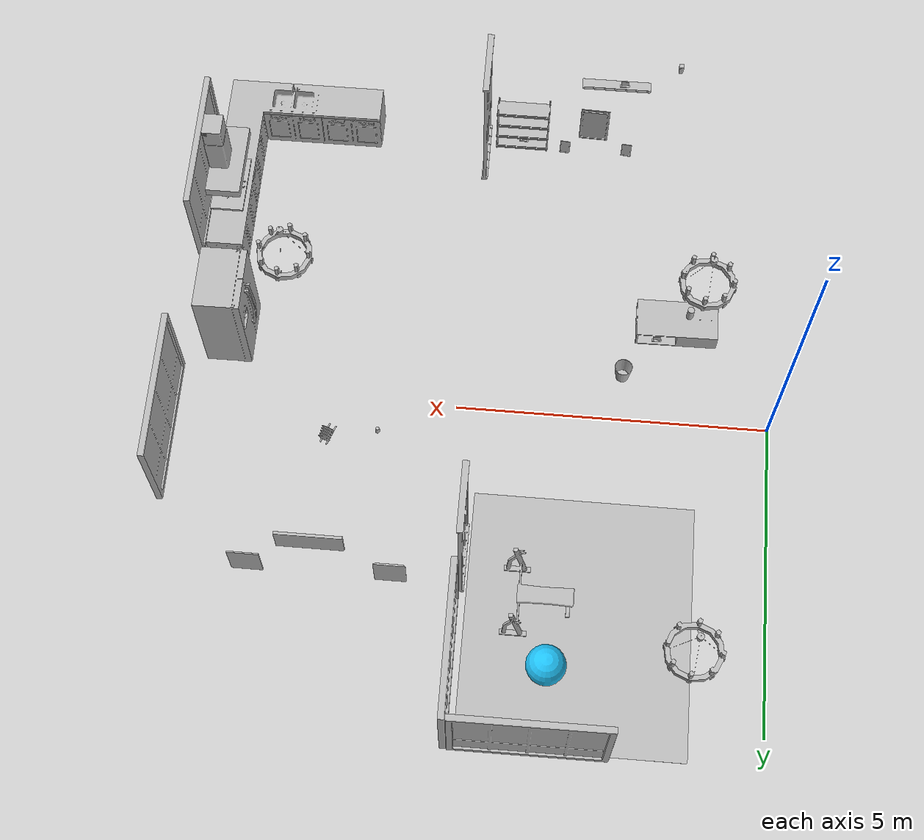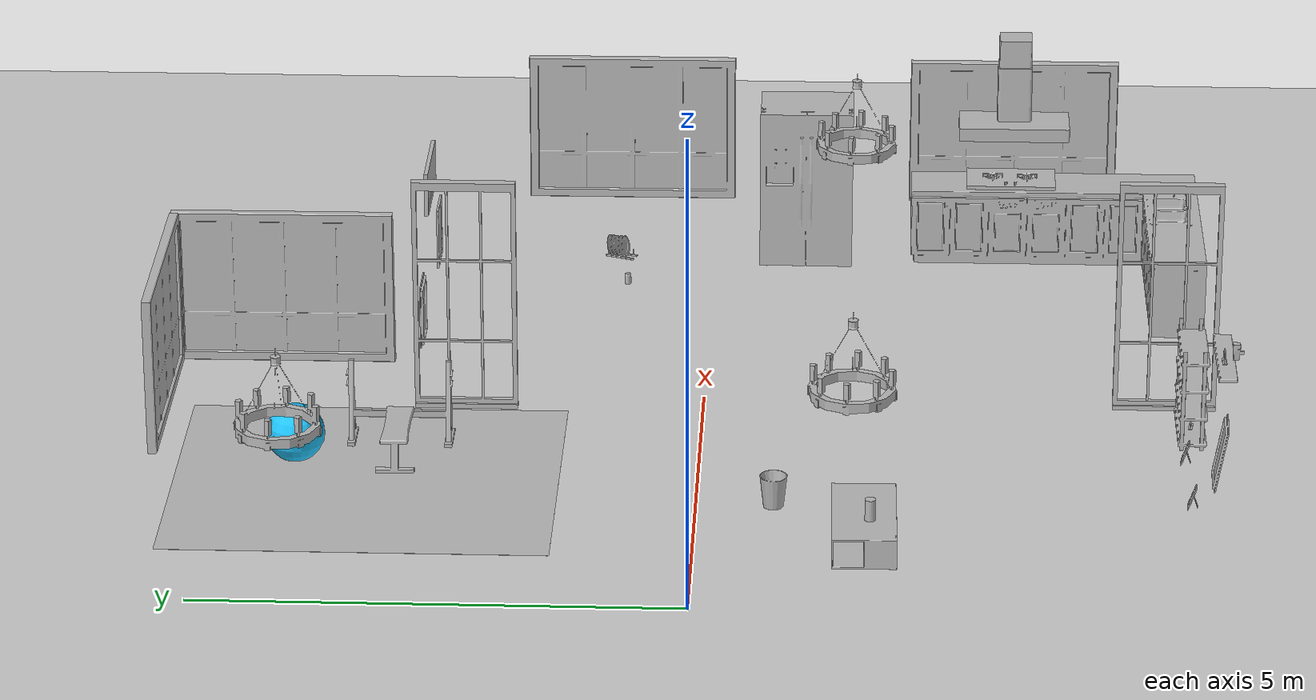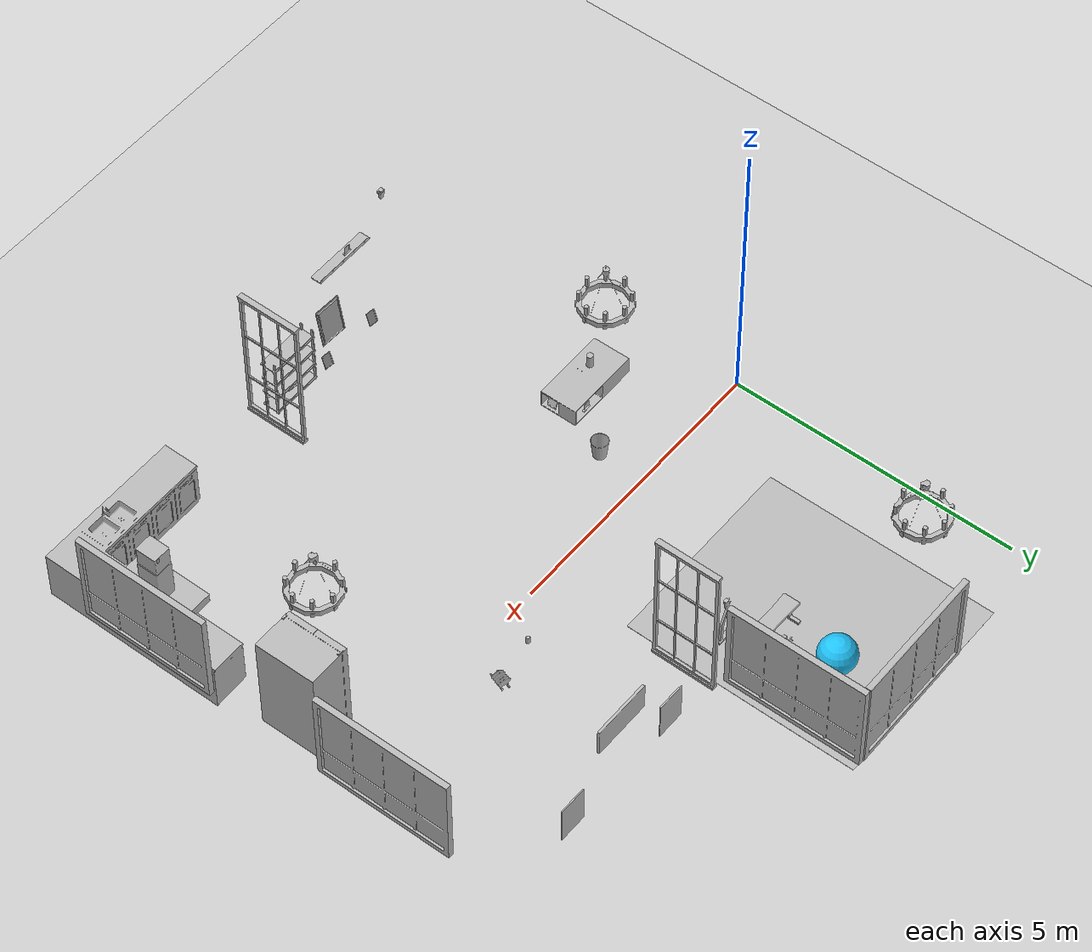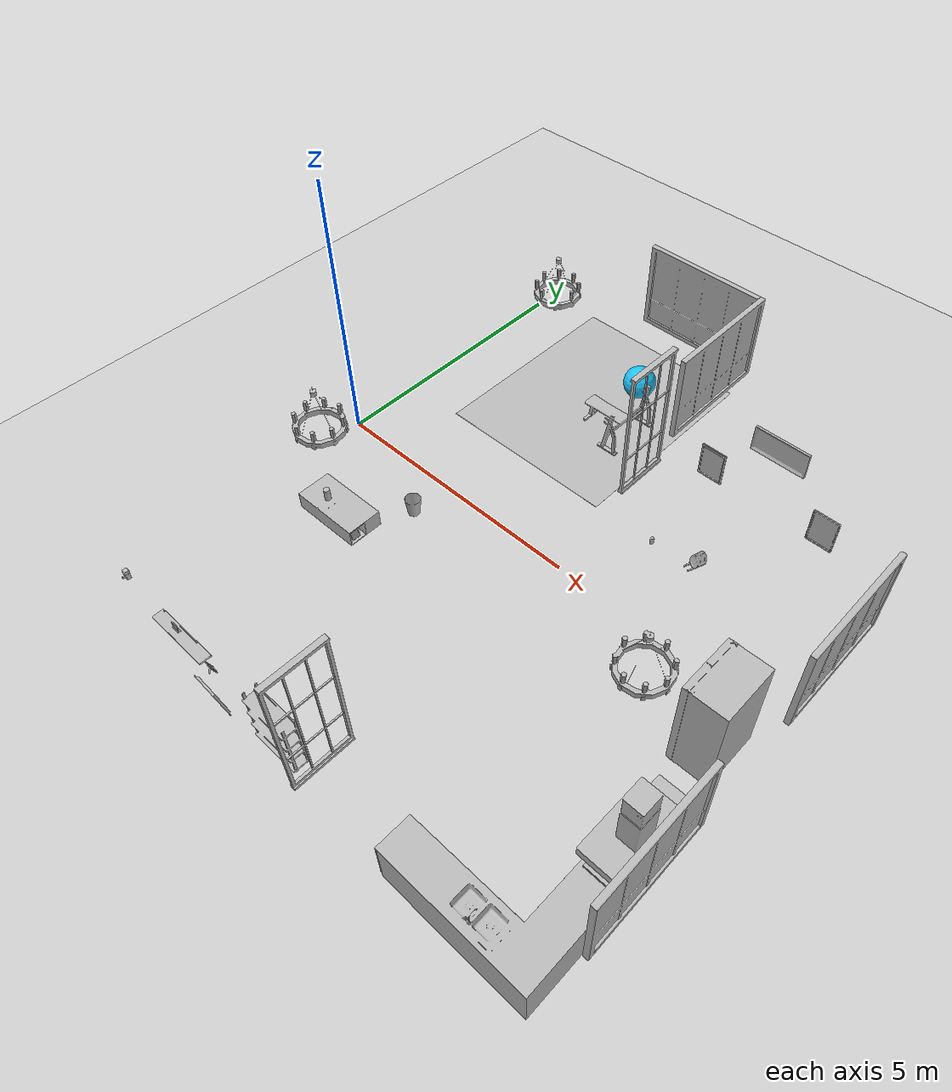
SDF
<sdf version="1.6">
 <world name="default">
  <model name="ground_plane">
   <static>1</static>
   <link name="link">
    <collision name="collision">
     <geometry><plane><normal>0 0 1</normal><size>100 100</size></plane></geometry>
     <surface><friction><ode><mu>100</mu><mu2>50</mu2></ode></friction></surface>
    </collision>
    <visual name="visual">
     <cast_shadows>0</cast_shadows>
     <geometry><plane><normal>0 0 1</normal><size>100 100</size></plane></geometry>
     <material>
      <script><uri>file://media/materials/scripts/gazebo.material</uri><name>Gazebo/Grey</name></script>
     </material>
    </visual>
   </link>
  </model>
  <model name="Ball_01_001">
   <link name="aws_robomaker_residential_Ball_01::link">
    <inertial>
     <mass>0.12</mass>
     <inertia>
      <ixx>0.030752</ixx>
      <ixy>0</ixy>
      <ixz>0</ixz>
      <iyy>0.030752</iyy>
      <iyz>0</iyz>
      <izz>0.030752</izz>
     </inertia>
    </inertial>
    <collision name="collision">
     <geometry><sphere><radius>0.31</radius></sphere></geometry>
     <surface>
      <friction><ode><mu>0.85</mu><mu2>0.85</mu2></ode></friction>
      <contact><ode><kd>8500</kd><max_vel>5.1</max_vel></ode></contact>
     </surface>
    </collision>
    <visual name="visual">
     <geometry><sphere><radius>0.31</radius></sphere></geometry>
     <material><diffuse>0.12 0.76 0.97 1</diffuse><ambient>0.03 0.21 0.27 1</ambient></material>
     <meta><layer>1</layer></meta>
    </visual>
   </link>
   <pose>3.2955 4.22567 0.30999 0 -0 0</pose>
  </model>
  <model name="Board_01_001">
   <link name="aws_robomaker_residential_Board_01::link">
    <inertial><mass>1</mass></inertial>
    <collision name="collision">
     <geometry>
      <mesh>
       <uri>file://models/aws_robomaker_residential_Board_01/meshes/aws_Board_01_collision.DAE</uri>
       <scale>1 1 1</scale>
      </mesh>
     </geometry>
    </collision>
    <visual name="visual">
     <geometry>
      <mesh><uri>file://models/aws_robomaker_residential_Board_01/meshes/aws_Board_01_visual.DAE</uri></mesh>
     </geometry>
     <meta><layer>2</layer></meta>
    </visual>
   </link>
   <static>1</static>
   <pose>2.77907 -5.3927 1.53817 0 -0 0</pose>
  </model>
  <model name="Chandelier_01_001">
   <link name="aws_robomaker_residential_Chandelier_01::link">
    <inertial><mass>1</mass></inertial>
    <collision name="collision">
     <geometry>
      <mesh>
       <uri>file://models/aws_robomaker_residential_Chandelier_01/meshes/aws_Chandelier_01_collision.DAE</uri>
       <scale>1 1 1</scale>
      </mesh>
     </geometry>
    </collision>
    <visual name="visual">
     <geometry>
      <mesh>
       <uri>file://models/aws_robomaker_residential_Chandelier_01/meshes/aws_Chandelier_01_visual.DAE</uri>
      </mesh>
     </geometry>
     <meta><layer>2</layer></meta>
    </visual>
   </link>
   <static>1</static>
   <pose>1.22106 4.15574 1.295 0 -0 0</pose>
  </model>
  <model name="Chandelier_01_003">
   <link name="aws_robomaker_residential_Chandelier_01::link">
    <inertial><mass>1</mass></inertial>
    <collision name="collision">
     <geometry>
      <mesh>
       <uri>file://models/aws_robomaker_residential_Chandelier_01/meshes/aws_Chandelier_01_collision.DAE</uri>
       <scale>1 1 1</scale>
      </mesh>
     </geometry>
    </collision>
    <visual name="visual">
     <geometry>
      <mesh>
       <uri>file://models/aws_robomaker_residential_Chandelier_01/meshes/aws_Chandelier_01_visual.DAE</uri>
      </mesh>
     </geometry>
     <meta><layer>2</layer></meta>
    </visual>
   </link>
   <static>1</static>
   <pose>7.82406 -1.59 1.751 0 -0 0</pose>
  </model>
  <model name="Chandelier_01_004">
   <link name="aws_robomaker_residential_Chandelier_01::link">
    <inertial><mass>1</mass></inertial>
    <collision name="collision">
     <geometry>
      <mesh>
       <uri>file://models/aws_robomaker_residential_Chandelier_01/meshes/aws_Chandelier_01_collision.DAE</uri>
       <scale>1 1 1</scale>
      </mesh>
     </geometry>
    </collision>
    <visual name="visual">
     <geometry>
      <mesh>
       <uri>file://models/aws_robomaker_residential_Chandelier_01/meshes/aws_Chandelier_01_visual.DAE</uri>
      </mesh>
     </geometry>
     <meta><layer>2</layer></meta>
    </visual>
   </link>
   <static>1</static>
   <pose>1.22106 -1.59204 1.7873 0 -0 0</pose>
  </model>
  <model name="Carpet_01_002">
   <link name="aws_robomaker_residential_Carpet_01::link">
    <inertial><mass>8.1</mass></inertial>
    <collision name="collision">
     <geometry>
      <mesh>
       <uri>file://models/aws_robomaker_residential_Carpet_01/meshes/aws_Carpet_01_collision.DAE</uri>
       <scale>1 1 0.95</scale>
      </mesh>
     </geometry>
     <pose>0 0 -0.01 0 -0 0</pose>
    </collision>
    <visual name="visual">
     <geometry>
      <mesh><uri>file://models/aws_robomaker_residential_Carpet_01/meshes/aws_Carpet_01_visual.DAE</uri></mesh>
     </geometry>
     <meta><layer>1</layer></meta>
    </visual>
   </link>
   <static>1</static>
   <pose>2.85405 3.45 0.000585 0 -0 0</pose>
  </model>
  <model name="CoffeeTable_01_001">
   <link name="aws_robomaker_residential_CoffeeTable_01::link">
    <inertial>
     <mass>21.7</mass>
     <inertia><ixx>0.81375</ixx><ixy>0</ixy><ixz>0</ixz><iyy>2.76675</iyy><iyz>0</iyz><izz>3.254</izz></inertia>
    </inertial>
    <collision name="collision">
     <geometry>
      <mesh>
       <uri>file://models/aws_robomaker_residential_CoffeeTable_01/meshes/aws_CoffeeTable_01_collision.DAE</uri>
       <scale>1 1 1</scale>
      </mesh>
     </geometry>
     <surface><contact><ode><max_vel>0.01</max_vel></ode></contact></surface>
    </collision>
    <visual name="visual">
     <geometry>
      <mesh>
       <uri>file://models/aws_robomaker_residential_CoffeeTable_01/meshes/aws_CoffeeTable_01_visual.DAE</uri>
      </mesh>
     </geometry>
     <meta><layer>1</layer></meta>
    </visual>
   </link>
   <static>1</static>
   <pose>1.5123 -1.73344 0.041983 0 -0 0.01</pose>
  </model>
  <model name="CookingBench_01_001">
   <link name="aws_robomaker_residential_CookingBench_01::link">
    <inertial><mass>1</mass></inertial>
    <collision name="collision">
     <geometry>
      <mesh>
       <uri>file://models/aws_robomaker_residential_CookingBench_01/meshes/aws_CookingBench_01_collision.DAE</uri>
       <scale>1 1 1</scale>
      </mesh>
     </geometry>
    </collision>
    <visual name="visual">
     <geometry>
      <mesh>
       <uri>file://models/aws_robomaker_residential_CookingBench_01/meshes/aws_CookingBench_01_visual.DAE</uri>
      </mesh>
     </geometry>
     <meta><layer>1</layer></meta>
    </visual>
   </link>
   <pose>9.03838 -3.35114 0.90361 0 -0 3.13713</pose>
   <static>1</static>
  </model>
  <model name="FitnessEquipment_01_001">
   <link name="aws_robomaker_residential_FitnessEquipment_01::link">
    <inertial><mass>80</mass></inertial>
    <collision name="collision">
     <geometry>
      <mesh>
       <uri>file://models/aws_robomaker_residential_FitnessEquipment_01/meshes/aws_FitnessEquipment_01_collision.DAE</uri>
       <scale>1 1 1</scale>
      </mesh>
     </geometry>
    </collision>
    <visual name="visual">
     <geometry>
      <mesh>
       <uri>file://models/aws_robomaker_residential_FitnessEquipment_01/meshes/aws_FitnessEquipment_01_visual.DAE</uri>
      </mesh>
     </geometry>
     <meta><layer>1</layer></meta>
    </visual>
   </link>
   <static>1</static>
   <pose>3.48472 3.1691 0.003168 0 -0 0</pose>
  </model>
  <model name="FoldingDoor_02_001">
   <link name="aws_robomaker_residential_FoldingDoor_02::link">
    <inertial><mass>1</mass></inertial>
    <collision name="collision">
     <geometry>
      <mesh>
       <uri>file://models/aws_robomaker_residential_FoldingDoor_02/meshes/aws_FoldingDoor_02_collision.DAE</uri>
       <scale>1 1 1</scale>
      </mesh>
     </geometry>
    </collision>
    <visual name="visual">
     <geometry>
      <mesh>
       <uri>file://models/aws_robomaker_residential_FoldingDoor_02/meshes/aws_FoldingDoor_02_visual.DAE</uri>
      </mesh>
     </geometry>
     <meta><layer>2</layer></meta>
    </visual>
   </link>
   <static>1</static>
   <pose>4.67423 2.46451 0 0 -0 3.14159</pose>
  </model>
  <model name="FoldingDoor_02_002">
   <link name="aws_robomaker_residential_FoldingDoor_02::link">
    <inertial><mass>1</mass></inertial>
    <collision name="collision">
     <geometry>
      <mesh>
       <uri>file://models/aws_robomaker_residential_FoldingDoor_02/meshes/aws_FoldingDoor_02_collision.DAE</uri>
       <scale>1 1 1</scale>
      </mesh>
     </geometry>
    </collision>
    <visual name="visual">
     <geometry>
      <mesh>
       <uri>file://models/aws_robomaker_residential_FoldingDoor_02/meshes/aws_FoldingDoor_02_visual.DAE</uri>
      </mesh>
     </geometry>
     <meta><layer>2</layer></meta>
    </visual>
   </link>
   <static>1</static>
   <pose>4.8912 -4.84968 0 0 -0 0</pose>
  </model>
  <model name="KitchenCabinet_01_001">
   <link name="aws_robomaker_residential_KitchenCabinet_01::link">
    <inertial><mass>1</mass></inertial>
    <collision name="collision">
     <geometry>
      <mesh>
       <uri>file://models/aws_robomaker_residential_KitchenCabinet_01/meshes/aws_KitchenCabinet_01_collision.DAE</uri>
       <scale>1 1 1</scale>
      </mesh>
     </geometry>
    </collision>
    <visual name="visual">
     <geometry>
      <mesh>
       <uri>file://models/aws_robomaker_residential_KitchenCabinet_01/meshes/aws_KitchenCabinet_01_visual.DAE</uri>
      </mesh>
     </geometry>
     <meta><layer>1</layer></meta>
    </visual>
   </link>
   <static>1</static>
   <pose>8.00201 -3.83651 0.012068 0 0 -3.14</pose>
  </model>
  <model name="LightC_01_001">
   <link name="aws_robomaker_residential_LightC_01::link">
    <inertial><mass>1</mass></inertial>
    <collision name="collision">
     <geometry>
      <mesh>
       <uri>file://models/aws_robomaker_residential_LightC_01/meshes/aws_LightC_01_collision.DAE</uri>
       <scale>1 1 1</scale>
      </mesh>
     </geometry>
    </collision>
    <visual name="visual">
     <geometry>
      <mesh><uri>file://models/aws_robomaker_residential_LightC_01/meshes/aws_LightC_01_visual.DAE</uri></mesh>
     </geometry>
     <meta><layer>2</layer></meta>
    </visual>
   </link>
   <static>1</static>
   <pose>1.76957 -5.44437 2 0 -0 0</pose>
  </model>
  <model name="PortraitB_02">
   <link name="aws_robomaker_residential_PortraitB_02::link">
    <inertial><mass>1</mass></inertial>
    <collision name="collision">
     <geometry>
      <mesh>
       <uri>file://models/aws_robomaker_residential_PortraitB_02/meshes/aws_PortraitB_01_collision.DAE</uri>
       <scale>1 1 1</scale>
      </mesh>
     </geometry>
    </collision>
    <visual name="visual">
     <geometry>
      <mesh>
       <uri>file://models/aws_robomaker_residential_PortraitB_02/meshes/aws_PortraitB_01_visual.DAE</uri>
      </mesh>
     </geometry>
     <meta><layer>2</layer></meta>
    </visual>
   </link>
   <static>1</static>
   <pose>5.73702 3.08031 0.3 0 -0 0</pose>
  </model>
  <model name="PortraitB_03">
   <link name="aws_robomaker_residential_PortraitB_03::link">
    <inertial><mass>1</mass></inertial>
    <collision name="collision">
     <geometry>
      <mesh>
       <uri>file://models/aws_robomaker_residential_PortraitB_03/meshes/aws_PortraitB_01_collision.DAE</uri>
       <scale>1 1 1</scale>
      </mesh>
     </geometry>
    </collision>
    <visual name="visual">
     <geometry>
      <mesh>
       <uri>file://models/aws_robomaker_residential_PortraitB_03/meshes/aws_PortraitB_01_visual.DAE</uri>
      </mesh>
     </geometry>
     <meta><layer>2</layer></meta>
    </visual>
   </link>
   <static>1</static>
   <pose>3.07138 -5.34937 0.005494 -0.168428 -0 3.10423</pose>
  </model>
  <model name="PortraitA_02">
   <link name="aws_robomaker_residential_PortraitA_02::link">
    <inertial><mass>1</mass></inertial>
    <collision name="collision">
     <geometry>
      <mesh>
       <uri>file://models/aws_robomaker_residential_PortraitA_02/meshes/aws_PortraitA_01_collision.DAE</uri>
       <scale>1 1 1</scale>
      </mesh>
     </geometry>
    </collision>
    <visual name="visual">
     <geometry>
      <mesh>
       <uri>file://models/aws_robomaker_residential_PortraitA_02/meshes/aws_PortraitA_01_visual.DAE</uri>
      </mesh>
     </geometry>
     <meta><layer>2</layer></meta>
    </visual>
   </link>
   <static>1</static>
   <pose>7.93702 3.08031 0.3 0 -0 3.14</pose>
  </model>
  <model name="PortraitD_02">
   <link name="aws_robomaker_residential_PortraitD_02::link">
    <inertial><mass>1.5</mass></inertial>
    <collision name="collision">
     <geometry>
      <mesh>
       <uri>file://models/aws_robomaker_residential_PortraitD_02/meshes/aws_PortraitD_01_collision.DAE</uri>
       <scale>1 1 1</scale>
      </mesh>
     </geometry>
    </collision>
    <visual name="visual">
     <geometry>
      <mesh>
       <uri>file://models/aws_robomaker_residential_PortraitD_02/meshes/aws_PortraitD_01_visual.DAE</uri>
      </mesh>
     </geometry>
     <meta><layer>2</layer></meta>
    </visual>
   </link>
   <static>1</static>
   <pose>6.87018 3.08031 1.48844 0 -0 0</pose>
  </model>
  <model name="DeskPortraitA_02">
   <link name="aws_robomaker_residential_DeskPortraitA_02::link">
    <inertial>
     <mass>1</mass>
     <inertia><ixx>0.0835</ixx><ixy>0</ixy><ixz>0</ixz><iyy>0.16</iyy><iyz>0</iyz><izz>0.08347</izz></inertia>
    </inertial>
    <collision name="collision">
     <geometry>
      <mesh>
       <uri>file://models/aws_robomaker_residential_DeskPortraitA_02/meshes/aws_DeskPortraitA_01_collision.DAE</uri>
       <scale>1 1 1</scale>
      </mesh>
     </geometry>
    </collision>
    <visual name="visual">
     <geometry>
      <mesh>
       <uri>file://models/aws_robomaker_residential_DeskPortraitA_02/meshes/aws_DeskPortraitA_01_visual.DAE</uri>
      </mesh>
     </geometry>
     <meta><layer>1</layer></meta>
    </visual>
   </link>
   <pose>2.0461 -1.89292 0.065162 -0.00054 -2e-06 1.57623</pose>
  </model>
  <model name="DeskPortraitD_01">
   <link name="aws_robomaker_residential_DeskPortraitD_01::link">
    <inertial>
     <mass>0.4</mass>
     <inertia><ixx>0.0616</ixx><ixy>0</ixy><ixz>0</ixz><iyy>0.1313</iyy><iyz>0</iyz><izz>0.0803</izz></inertia>
    </inertial>
    <collision name="collision">
     <geometry>
      <mesh>
       <uri>file://models/aws_robomaker_residential_DeskPortraitD_01/meshes/aws_DeskPortraitD_01_collision.DAE</uri>
       <scale>1 1 1</scale>
      </mesh>
     </geometry>
     <surface>
      <friction><ode><mu>0.7</mu><mu2>0.7</mu2></ode></friction>
      <contact><ode><kd>28500</kd></ode></contact>
     </surface>
    </collision>
    <visual name="visual">
     <geometry>
      <mesh>
       <uri>file://models/aws_robomaker_residential_DeskPortraitD_01/meshes/aws_DeskPortraitD_01_visual.DAE</uri>
      </mesh>
     </geometry>
     <meta><layer>1</layer></meta>
    </visual>
   </link>
   <pose>2.64556 -5.37622 1.57417 1e-06 -0 -3.11283</pose>
  </model>
  <model name="DeskPortraitD_03">
   <link name="aws_robomaker_residential_DeskPortraitD_03::link">
    <inertial>
     <mass>0.4</mass>
     <inertia><ixx>0.0616</ixx><ixy>0</ixy><ixz>0</ixz><iyy>0.1313</iyy><iyz>0</iyz><izz>0.0803</izz></inertia>
    </inertial>
    <collision name="collision">
     <geometry>
      <mesh>
       <uri>file://models/aws_robomaker_residential_DeskPortraitD_03/meshes/aws_DeskPortraitD_01_collision.DAE</uri>
       <scale>1 1 1</scale>
      </mesh>
     </geometry>
     <surface>
      <friction><ode><mu>0.7</mu><mu2>0.7</mu2></ode></friction>
      <contact><ode><kd>28500</kd></ode></contact>
     </surface>
    </collision>
    <visual name="visual">
     <geometry>
      <mesh>
       <uri>file://models/aws_robomaker_residential_DeskPortraitD_03/meshes/aws_DeskPortraitD_01_visual.DAE</uri>
      </mesh>
     </geometry>
     <meta><layer>1</layer></meta>
    </visual>
   </link>
   <pose>1.82673 -1.46488 0.064775 4e-06 -0 -3.11438</pose>
  </model>
  <model name="DeskPortraitD_04">
   <link name="aws_robomaker_residential_DeskPortraitD_04::link">
    <inertial>
     <mass>0.4</mass>
     <inertia><ixx>0.0616</ixx><ixy>0</ixy><ixz>0</ixz><iyy>0.1313</iyy><iyz>0</iyz><izz>0.0803</izz></inertia>
    </inertial>
    <collision name="collision">
     <geometry>
      <mesh>
       <uri>file://models/aws_robomaker_residential_DeskPortraitD_04/meshes/aws_DeskPortraitD_01_collision.DAE</uri>
       <scale>1 1 1</scale>
      </mesh>
     </geometry>
     <surface>
      <friction><ode><mu>0.7</mu><mu2>0.7</mu2></ode></friction>
      <contact><ode><kd>28500</kd></ode></contact>
     </surface>
    </collision>
    <visual name="visual">
     <geometry>
      <mesh>
       <uri>file://models/aws_robomaker_residential_DeskPortraitD_04/meshes/aws_DeskPortraitD_01_visual.DAE</uri>
      </mesh>
     </geometry>
     <meta><layer>1</layer></meta>
    </visual>
   </link>
   <pose>4.26565 -5.17537 0.079755 -0.000611 0.003648 3.0449</pose>
  </model>
  <model name="DeskPortraitB_01">
   <link name="aws_robomaker_residential_DeskPortraitB_01::link">
    <inertial>
     <mass>1</mass>
     <inertia><ixx>0.0135</ixx><ixy>0</ixy><ixz>0</ixz><iyy>0.02</iyy><iyz>0</iyz><izz>0.01347</izz></inertia>
    </inertial>
    <collision name="collision">
     <geometry>
      <mesh>
       <uri>file://models/aws_robomaker_residential_DeskPortraitB_01/meshes/aws_DeskPortraitB_01_collision.DAE</uri>
       <scale>1 1 1</scale>
      </mesh>
     </geometry>
    </collision>
    <visual name="visual">
     <geometry>
      <mesh>
       <uri>file://models/aws_robomaker_residential_DeskPortraitB_01/meshes/aws_DeskPortraitB_01_visual.DAE</uri>
      </mesh>
     </geometry>
     <meta><layer>1</layer></meta>
    </visual>
   </link>
   <pose>3.54738 -5.0839 -0.012668 -0.336614 -0 3.04676</pose>
  </model>
  <model name="DeskPortraitB_02">
   <link name="aws_robomaker_residential_DeskPortraitB_02::link">
    <inertial>
     <mass>1</mass>
     <inertia><ixx>0.0135</ixx><ixy>0</ixy><ixz>0</ixz><iyy>0.02</iyy><iyz>0</iyz><izz>0.01347</izz></inertia>
    </inertial>
    <collision name="collision">
     <geometry>
      <mesh>
       <uri>file://models/aws_robomaker_residential_DeskPortraitB_02/meshes/aws_DeskPortraitB_01_collision.DAE</uri>
       <scale>1 1 1</scale>
      </mesh>
     </geometry>
    </collision>
    <visual name="visual">
     <geometry>
      <mesh>
       <uri>file://models/aws_robomaker_residential_DeskPortraitB_02/meshes/aws_DeskPortraitB_01_visual.DAE</uri>
      </mesh>
     </geometry>
     <meta><layer>1</layer></meta>
    </visual>
   </link>
   <pose>2.48627 -5.10252 -0.012667 -0.336616 -0 3.04681</pose>
  </model>
  <model name="Rangehood_01_001">
   <link name="aws_robomaker_residential_Rangehood_01::link">
    <inertial><mass>1</mass></inertial>
    <collision name="collision">
     <geometry>
      <mesh>
       <uri>file://models/aws_robomaker_residential_Rangehood_01/meshes/aws_Rangehood_01_collision.DAE</uri>
       <scale>1 1 1</scale>
      </mesh>
     </geometry>
    </collision>
    <visual name="visual">
     <geometry>
      <mesh>
       <uri>file://models/aws_robomaker_residential_Rangehood_01/meshes/aws_Rangehood_01_visual.DAE</uri>
      </mesh>
     </geometry>
     <meta><layer>2</layer></meta>
    </visual>
   </link>
   <static>1</static>
   <pose>9.01979 -3.36994 1.50761 0 -0 0</pose>
  </model>
  <model name="Refrigerator_01_001">
   <link name="aws_robomaker_residential_Refrigerator_01::link">
    <inertial><mass>1</mass></inertial>
    <collision name="collision">
     <geometry>
      <mesh>
       <uri>file://models/aws_robomaker_residential_Refrigerator_01/meshes/aws_Refrigerator_01_collision.DAE</uri>
       <scale>1 1 1</scale>
      </mesh>
     </geometry>
    </collision>
    <visual name="visual">
     <geometry>
      <mesh>
       <uri>file://models/aws_robomaker_residential_Refrigerator_01/meshes/aws_Refrigerator_01_visual.DAE</uri>
      </mesh>
     </geometry>
     <meta><layer>1</layer></meta>
    </visual>
   </link>
   <static>1</static>
   <pose>8.70273 -1.03203 0 0 0 -1.5635</pose>
  </model>
  <model name="ShoeRack_01_001">
   <link name="aws_robomaker_residential_ShoeRack_01::link">
    <inertial>
     <mass>6</mass>
     <inertia>
      <ixx>0.02</ixx>
      <ixy>0</ixy>
      <ixz>0</ixz>
      <iyy>0.04</iyy>
      <iyz>0</iyz>
      <ixx>0.02</ixx>
      <izz>1</izz>
     </inertia>
    </inertial>
    <collision name="collision">
     <geometry>
      <mesh>
       <uri>file://models/aws_robomaker_residential_ShoeRack_01/meshes/aws_ShoeRack_01_collision.DAE</uri>
       <scale>1 1 1</scale>
      </mesh>
     </geometry>
     <surface>
      <friction><ode><mu>0.2</mu><mu2>0.2</mu2></ode></friction>
      <contact><ode><kd>2500</kd></ode></contact>
     </surface>
    </collision>
    <visual name="visual">
     <geometry>
      <mesh><uri>file://models/aws_robomaker_residential_ShoeRack_01/meshes/aws_ShoeRack_01_visual.DAE</uri></mesh>
     </geometry>
     <meta><layer>1</layer></meta>
    </visual>
   </link>
   <pose>4.29848 -5.17356 0.000881 0.000256 -0.003683 3.2e-05</pose>
  </model>
  <model name="Tableware_01_001">
   <link name="aws_robomaker_residential_Tableware_01::link">
    <inertial>
     <mass>1</mass>
     <inertia><ixx>1</ixx><ixy>0</ixy><ixz>0</ixz><iyy>1</iyy><iyz>0</iyz><izz>1</izz></inertia>
    </inertial>
    <collision name="collision">
     <geometry>
      <mesh>
       <uri>file://models/aws_robomaker_residential_Tableware_01/meshes/aws_Tableware_01_collision.DAE</uri>
       <scale>1 1 1</scale>
      </mesh>
     </geometry>
    </collision>
    <visual name="visual">
     <geometry>
      <mesh>
       <uri>file://models/aws_robomaker_residential_Tableware_01/meshes/aws_Tableware_01_visual.DAE</uri>
      </mesh>
     </geometry>
     <meta><layer>1</layer></meta>
    </visual>
   </link>
   <pose>6.91899 0.975929 0.81901 -1.3e-05 -6e-06 1.31934</pose>
  </model>
  <model name="Trash_01_001">
   <link name="aws_robomaker_residential_Trash_01::link">
    <inertial>
     <mass>0.1</mass>
     <inertia><ixy>0</ixy><ixz>0</ixz><iyz>0</iyz><ixx>0.05288</ixx><iyy>0.05288</iyy><izz>0.09132</izz></inertia>
    </inertial>
    <collision name="collision">
     <geometry>
      <mesh>
       <uri>file://models/aws_robomaker_residential_Trash_01/meshes/aws_Trash_01_collision.DAE</uri>
       <scale>1 1 1</scale>
      </mesh>
     </geometry>
    </collision>
    <visual name="visual">
     <geometry>
      <mesh><uri>file://models/aws_robomaker_residential_Trash_01/meshes/aws_Trash_01_visual.DAE</uri></mesh>
     </geometry>
     <meta><layer>1</layer></meta>
    </visual>
   </link>
   <pose>2.36015 -0.796238 0.000894 0 -0 1e-06</pose>
  </model>
  <model name="RoomWindow_01_003">
   <link name="aws_robomaker_residential_RoomWindow_01::link">
    <inertial><mass>1</mass></inertial>
    <collision name="collision">
     <geometry>
      <mesh>
       <uri>file://models/aws_robomaker_residential_RoomWindow_01/meshes/aws_RoomWindow_01_collision.DAE</uri>
       <scale>1 1 1</scale>
      </mesh>
     </geometry>
    </collision>
    <visual name="visual">
     <geometry>
      <mesh>
       <uri>file://models/aws_robomaker_residential_RoomWindow_01/meshes/aws_RoomWindow_01_visual.DAE</uri>
      </mesh>
     </geometry>
     <meta><layer>2</layer></meta>
    </visual>
   </link>
   <static>1</static>
   <pose>9.42262 -3.37398 0.502739 0 0 -3.1361</pose>
  </model>
  <model name="RoomWindow_01_004">
   <link name="aws_robomaker_residential_RoomWindow_01::link">
    <inertial><mass>1</mass></inertial>
    <collision name="collision">
     <geometry>
      <mesh>
       <uri>file://models/aws_robomaker_residential_RoomWindow_01/meshes/aws_RoomWindow_01_collision.DAE</uri>
       <scale>1 1 1</scale>
      </mesh>
     </geometry>
    </collision>
    <visual name="visual">
     <geometry>
      <mesh>
       <uri>file://models/aws_robomaker_residential_RoomWindow_01/meshes/aws_RoomWindow_01_visual.DAE</uri>
      </mesh>
     </geometry>
     <meta><layer>2</layer></meta>
    </visual>
   </link>
   <static>1</static>
   <pose>9.42256 0.96852 0.496581 0 0 -3.1361</pose>
  </model>
  <model name="RoomWindow_01_005">
   <link name="aws_robomaker_residential_RoomWindow_01::link">
    <inertial><mass>1</mass></inertial>
    <collision name="collision">
     <geometry>
      <mesh>
       <uri>file://models/aws_robomaker_residential_RoomWindow_01/meshes/aws_RoomWindow_01_collision.DAE</uri>
       <scale>1 1 1</scale>
      </mesh>
     </geometry>
    </collision>
    <visual name="visual">
     <geometry>
      <mesh>
       <uri>file://models/aws_robomaker_residential_RoomWindow_01/meshes/aws_RoomWindow_01_visual.DAE</uri>
      </mesh>
     </geometry>
     <meta><layer>2</layer></meta>
    </visual>
   </link>
   <static>1</static>
   <pose>4.72232 4.47028 0.502739 0 0 -3.1361</pose>
  </model>
  <model name="RoomWindow_01_006">
   <link name="aws_robomaker_residential_RoomWindow_01::link">
    <inertial><mass>1</mass></inertial>
    <collision name="collision">
     <geometry>
      <mesh>
       <uri>file://models/aws_robomaker_residential_RoomWindow_01/meshes/aws_RoomWindow_01_collision.DAE</uri>
       <scale>1 1 1</scale>
      </mesh>
     </geometry>
    </collision>
    <visual name="visual">
     <geometry>
      <mesh>
       <uri>file://models/aws_robomaker_residential_RoomWindow_01/meshes/aws_RoomWindow_01_visual.DAE</uri>
      </mesh>
     </geometry>
     <meta><layer>2</layer></meta>
    </visual>
   </link>
   <static>1</static>
   <pose>3.48852 5.60069 0.502739 0 0 -1.56627</pose>
  </model>
  <model name="coke_can">
   <link name="link">
    <inertial>
     <pose>0 0 0.06 0 -0 0</pose>
     <mass>0.39</mass>
     <inertia>
      <ixx>0.00055575</ixx>
      <ixy>0</ixy>
      <ixz>0</ixz>
      <iyy>0.00055575</iyy>
      <iyz>0</iyz>
      <izz>0.0001755</izz>
     </inertia>
    </inertial>
    <collision name="collision">
     <pose>0.003937 0.004724 -0.18 0 -0 0</pose>
     <geometry><mesh><uri>model://coke_can/meshes/coke_can.dae</uri></mesh></geometry>
     <surface>
      <friction><ode><mu>1</mu><mu2>1</mu2></ode></friction>
      <contact><ode><kp>1e+07</kp><kd>1</kd><min_depth>0.001</min_depth><max_vel>0.1</max_vel></ode></contact>
     </surface>
    </collision>
    <visual name="visual">
     <pose>0.003937 0.004724 -0.18 0 -0 0</pose>
     <geometry><mesh><uri>model://coke_can/meshes/coke_can.dae</uri></mesh></geometry>
    </visual>
   </link>
   <pose>6.14568 0.873156 0.815893 -0.01123 0.003863 -0.064402</pose>
  </model>
  <model name="beer">
   <link name="link">
    <pose>0 0 0.115 0 -0 0</pose>
    <inertial>
     <mass>0.39</mass>
     <inertia><ixx>0.00058</ixx><ixy>0</ixy><ixz>0</ixz><iyy>0.00058</iyy><iyz>0</iyz><izz>0.00019</izz></inertia>
    </inertial>
    <collision name="collision">
     <geometry><cylinder><radius>0.055</radius><length>0.23</length></cylinder></geometry>
    </collision>
    <visual name="visual">
     <geometry><cylinder><radius>0.055</radius><length>0.23</length></cylinder></geometry>
     <material>
      <script>
       <uri>model://beer/materials/scripts</uri>
       <uri>model://beer/materials/textures</uri>
       <name>Beer/Diffuse</name>
      </script>
     </material>
    </visual>
   </link>
   <pose>1.32776 -1.79057 0.365739 2.6e-05 1e-06 0.002341</pose>
  </model>
 </world>
</sdf>
